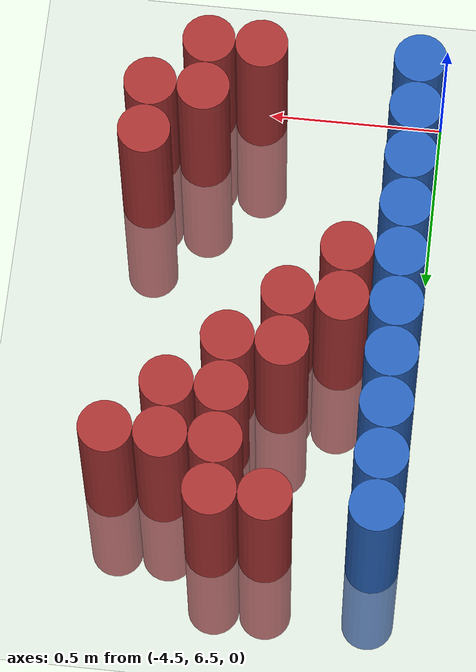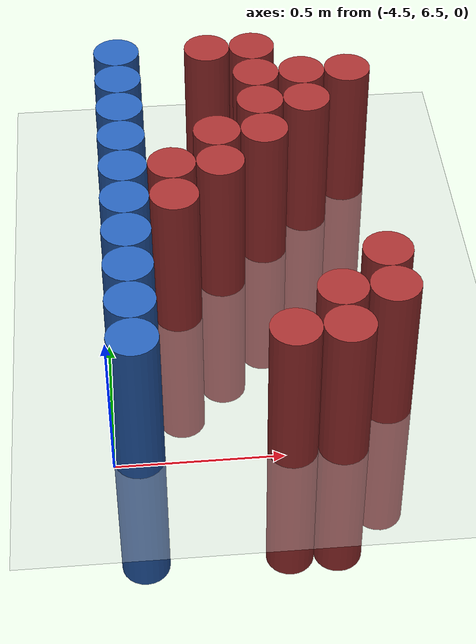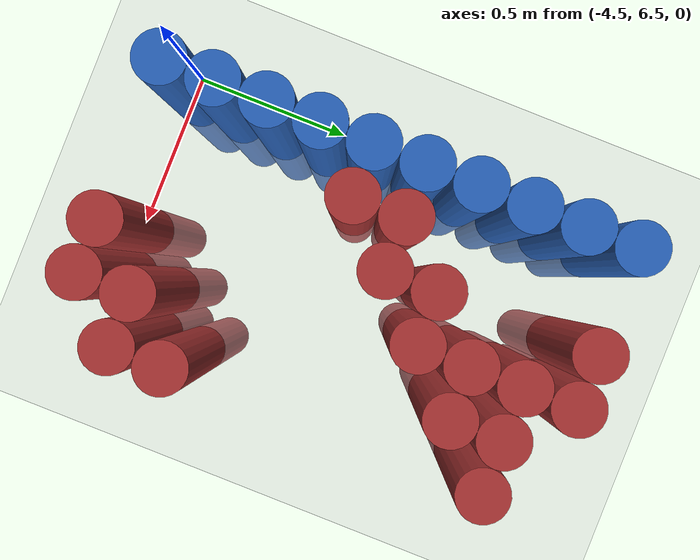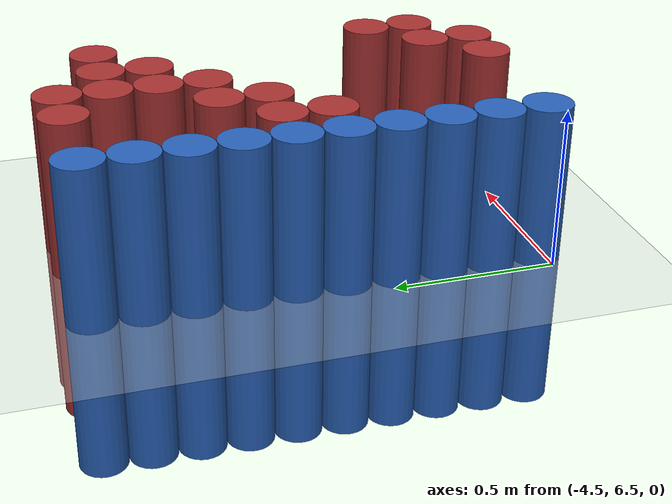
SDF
<sdf version="1.6">
 <world name="world_183">
  <model name="ground_plane">
   <static>1</static>
   <link name="link">
    <collision name="collision">
     <geometry><plane><normal>0 0 1</normal><size>100 100</size></plane></geometry>
     <surface><friction><ode><mu>100</mu><mu2>50</mu2></ode></friction></surface>
    </collision>
    <visual name="visual">
     <cast_shadows>0</cast_shadows>
     <geometry><plane><normal>0 0 1</normal><size>100 100</size></plane></geometry>
     <material>
      <script><uri>file://media/materials/scripts/gazebo.material</uri><name>Gazebo/Grey</name></script>
     </material>
    </visual>
   </link>
  </model>
  <model name="unit_cylinder_105">
   <static>1</static>
   <pose>-4.425000 6.525000 0.000000 0.000000 0.000000 0.000000</pose>
   <link name="link">
    <inertial>
     <mass>1</mass>
     <inertia><ixx>0.145833</ixx><ixy>0</ixy><ixz>0</ixz><iyy>0.145833</iyy><iyz>0</iyz><izz>0.125</izz></inertia>
    </inertial>
    <collision name="collision">
     <geometry><cylinder><radius>0.075000</radius><length>1</length></cylinder></geometry>
    </collision>
    <visual name="visual">
     <geometry><cylinder><radius>0.075000</radius><length>1</length></cylinder></geometry>
     <material>
      <ambient>0.152000 0.379000 0.720000 1</ambient>
      <diffuse>0.152000 0.379000 0.720000 1</diffuse>
     </material>
     <material>
      <script><name>Gazebo/Grey</name><uri>file://media/materials/scripts/gazebo.material</uri></script>
     </material>
    </visual>
   </link>
  </model>
  <model name="unit_cylinder_106">
   <static>1</static>
   <pose>-4.425000 6.675000 0.000000 0.000000 0.000000 0.000000</pose>
   <link name="link">
    <inertial>
     <mass>1</mass>
     <inertia><ixx>0.145833</ixx><ixy>0</ixy><ixz>0</ixz><iyy>0.145833</iyy><iyz>0</iyz><izz>0.125</izz></inertia>
    </inertial>
    <collision name="collision">
     <geometry><cylinder><radius>0.075000</radius><length>1</length></cylinder></geometry>
    </collision>
    <visual name="visual">
     <geometry><cylinder><radius>0.075000</radius><length>1</length></cylinder></geometry>
     <material>
      <ambient>0.152000 0.379000 0.720000 1</ambient>
      <diffuse>0.152000 0.379000 0.720000 1</diffuse>
     </material>
     <material>
      <script><name>Gazebo/Grey</name><uri>file://media/materials/scripts/gazebo.material</uri></script>
     </material>
    </visual>
   </link>
  </model>
  <model name="unit_cylinder_107">
   <static>1</static>
   <pose>-4.425000 6.825000 0.000000 0.000000 0.000000 0.000000</pose>
   <link name="link">
    <inertial>
     <mass>1</mass>
     <inertia><ixx>0.145833</ixx><ixy>0</ixy><ixz>0</ixz><iyy>0.145833</iyy><iyz>0</iyz><izz>0.125</izz></inertia>
    </inertial>
    <collision name="collision">
     <geometry><cylinder><radius>0.075000</radius><length>1</length></cylinder></geometry>
    </collision>
    <visual name="visual">
     <geometry><cylinder><radius>0.075000</radius><length>1</length></cylinder></geometry>
     <material>
      <ambient>0.152000 0.379000 0.720000 1</ambient>
      <diffuse>0.152000 0.379000 0.720000 1</diffuse>
     </material>
     <material>
      <script><name>Gazebo/Grey</name><uri>file://media/materials/scripts/gazebo.material</uri></script>
     </material>
    </visual>
   </link>
  </model>
  <model name="unit_cylinder_108">
   <static>1</static>
   <pose>-4.425000 6.975000 0.000000 0.000000 0.000000 0.000000</pose>
   <link name="link">
    <inertial>
     <mass>1</mass>
     <inertia><ixx>0.145833</ixx><ixy>0</ixy><ixz>0</ixz><iyy>0.145833</iyy><iyz>0</iyz><izz>0.125</izz></inertia>
    </inertial>
    <collision name="collision">
     <geometry><cylinder><radius>0.075000</radius><length>1</length></cylinder></geometry>
    </collision>
    <visual name="visual">
     <geometry><cylinder><radius>0.075000</radius><length>1</length></cylinder></geometry>
     <material>
      <ambient>0.152000 0.379000 0.720000 1</ambient>
      <diffuse>0.152000 0.379000 0.720000 1</diffuse>
     </material>
     <material>
      <script><name>Gazebo/Grey</name><uri>file://media/materials/scripts/gazebo.material</uri></script>
     </material>
    </visual>
   </link>
  </model>
  <model name="unit_cylinder_109">
   <static>1</static>
   <pose>-4.425000 7.125000 0.000000 0.000000 0.000000 0.000000</pose>
   <link name="link">
    <inertial>
     <mass>1</mass>
     <inertia><ixx>0.145833</ixx><ixy>0</ixy><ixz>0</ixz><iyy>0.145833</iyy><iyz>0</iyz><izz>0.125</izz></inertia>
    </inertial>
    <collision name="collision">
     <geometry><cylinder><radius>0.075000</radius><length>1</length></cylinder></geometry>
    </collision>
    <visual name="visual">
     <geometry><cylinder><radius>0.075000</radius><length>1</length></cylinder></geometry>
     <material>
      <ambient>0.152000 0.379000 0.720000 1</ambient>
      <diffuse>0.152000 0.379000 0.720000 1</diffuse>
     </material>
     <material>
      <script><name>Gazebo/Grey</name><uri>file://media/materials/scripts/gazebo.material</uri></script>
     </material>
    </visual>
   </link>
  </model>
  <model name="unit_cylinder_110">
   <static>1</static>
   <pose>-4.425000 7.275000 0.000000 0.000000 0.000000 0.000000</pose>
   <link name="link">
    <inertial>
     <mass>1</mass>
     <inertia><ixx>0.145833</ixx><ixy>0</ixy><ixz>0</ixz><iyy>0.145833</iyy><iyz>0</iyz><izz>0.125</izz></inertia>
    </inertial>
    <collision name="collision">
     <geometry><cylinder><radius>0.075000</radius><length>1</length></cylinder></geometry>
    </collision>
    <visual name="visual">
     <geometry><cylinder><radius>0.075000</radius><length>1</length></cylinder></geometry>
     <material>
      <ambient>0.152000 0.379000 0.720000 1</ambient>
      <diffuse>0.152000 0.379000 0.720000 1</diffuse>
     </material>
     <material>
      <script><name>Gazebo/Grey</name><uri>file://media/materials/scripts/gazebo.material</uri></script>
     </material>
    </visual>
   </link>
  </model>
  <model name="unit_cylinder_111">
   <static>1</static>
   <pose>-4.425000 7.425000 0.000000 0.000000 0.000000 0.000000</pose>
   <link name="link">
    <inertial>
     <mass>1</mass>
     <inertia><ixx>0.145833</ixx><ixy>0</ixy><ixz>0</ixz><iyy>0.145833</iyy><iyz>0</iyz><izz>0.125</izz></inertia>
    </inertial>
    <collision name="collision">
     <geometry><cylinder><radius>0.075000</radius><length>1</length></cylinder></geometry>
    </collision>
    <visual name="visual">
     <geometry><cylinder><radius>0.075000</radius><length>1</length></cylinder></geometry>
     <material>
      <ambient>0.152000 0.379000 0.720000 1</ambient>
      <diffuse>0.152000 0.379000 0.720000 1</diffuse>
     </material>
     <material>
      <script><name>Gazebo/Grey</name><uri>file://media/materials/scripts/gazebo.material</uri></script>
     </material>
    </visual>
   </link>
  </model>
  <model name="unit_cylinder_112">
   <static>1</static>
   <pose>-4.425000 7.575000 0.000000 0.000000 0.000000 0.000000</pose>
   <link name="link">
    <inertial>
     <mass>1</mass>
     <inertia><ixx>0.145833</ixx><ixy>0</ixy><ixz>0</ixz><iyy>0.145833</iyy><iyz>0</iyz><izz>0.125</izz></inertia>
    </inertial>
    <collision name="collision">
     <geometry><cylinder><radius>0.075000</radius><length>1</length></cylinder></geometry>
    </collision>
    <visual name="visual">
     <geometry><cylinder><radius>0.075000</radius><length>1</length></cylinder></geometry>
     <material>
      <ambient>0.152000 0.379000 0.720000 1</ambient>
      <diffuse>0.152000 0.379000 0.720000 1</diffuse>
     </material>
     <material>
      <script><name>Gazebo/Grey</name><uri>file://media/materials/scripts/gazebo.material</uri></script>
     </material>
    </visual>
   </link>
  </model>
  <model name="unit_cylinder_113">
   <static>1</static>
   <pose>-4.425000 7.725000 0.000000 0.000000 0.000000 0.000000</pose>
   <link name="link">
    <inertial>
     <mass>1</mass>
     <inertia><ixx>0.145833</ixx><ixy>0</ixy><ixz>0</ixz><iyy>0.145833</iyy><iyz>0</iyz><izz>0.125</izz></inertia>
    </inertial>
    <collision name="collision">
     <geometry><cylinder><radius>0.075000</radius><length>1</length></cylinder></geometry>
    </collision>
    <visual name="visual">
     <geometry><cylinder><radius>0.075000</radius><length>1</length></cylinder></geometry>
     <material>
      <ambient>0.152000 0.379000 0.720000 1</ambient>
      <diffuse>0.152000 0.379000 0.720000 1</diffuse>
     </material>
     <material>
      <script><name>Gazebo/Grey</name><uri>file://media/materials/scripts/gazebo.material</uri></script>
     </material>
    </visual>
   </link>
  </model>
  <model name="unit_cylinder_114">
   <static>1</static>
   <pose>-4.425000 7.875000 0.000000 0.000000 0.000000 0.000000</pose>
   <link name="link">
    <inertial>
     <mass>1</mass>
     <inertia><ixx>0.145833</ixx><ixy>0</ixy><ixz>0</ixz><iyy>0.145833</iyy><iyz>0</iyz><izz>0.125</izz></inertia>
    </inertial>
    <collision name="collision">
     <geometry><cylinder><radius>0.075000</radius><length>1</length></cylinder></geometry>
    </collision>
    <visual name="visual">
     <geometry><cylinder><radius>0.075000</radius><length>1</length></cylinder></geometry>
     <material>
      <ambient>0.152000 0.379000 0.720000 1</ambient>
      <diffuse>0.152000 0.379000 0.720000 1</diffuse>
     </material>
     <material>
      <script><name>Gazebo/Grey</name><uri>file://media/materials/scripts/gazebo.material</uri></script>
     </material>
    </visual>
   </link>
  </model>
  <model name="unit_cylinder_129">
   <static>1</static>
   <pose>-4.275000 7.125000 0.000000 0.000000 0.000000 0.000000</pose>
   <link name="link">
    <inertial>
     <mass>1</mass>
     <inertia><ixx>0.145833</ixx><ixy>0</ixy><ixz>0</ixz><iyy>0.145833</iyy><iyz>0</iyz><izz>0.125</izz></inertia>
    </inertial>
    <collision name="collision">
     <geometry><cylinder><radius>0.075000</radius><length>1</length></cylinder></geometry>
    </collision>
    <visual name="visual">
     <geometry><cylinder><radius>0.075000</radius><length>1</length></cylinder></geometry>
     <material>
      <ambient>0.648000 0.192000 0.192000 1</ambient>
      <diffuse>0.648000 0.192000 0.192000 1</diffuse>
     </material>
     <material>
      <script><name>Gazebo/Grey</name><uri>file://media/materials/scripts/gazebo.material</uri></script>
     </material>
    </visual>
   </link>
  </model>
  <model name="unit_cylinder_130">
   <static>1</static>
   <pose>-4.275000 7.275000 0.000000 0.000000 0.000000 0.000000</pose>
   <link name="link">
    <inertial>
     <mass>1</mass>
     <inertia><ixx>0.145833</ixx><ixy>0</ixy><ixz>0</ixz><iyy>0.145833</iyy><iyz>0</iyz><izz>0.125</izz></inertia>
    </inertial>
    <collision name="collision">
     <geometry><cylinder><radius>0.075000</radius><length>1</length></cylinder></geometry>
    </collision>
    <visual name="visual">
     <geometry><cylinder><radius>0.075000</radius><length>1</length></cylinder></geometry>
     <material>
      <ambient>0.648000 0.192000 0.192000 1</ambient>
      <diffuse>0.648000 0.192000 0.192000 1</diffuse>
     </material>
     <material>
      <script><name>Gazebo/Grey</name><uri>file://media/materials/scripts/gazebo.material</uri></script>
     </material>
    </visual>
   </link>
  </model>
  <model name="unit_cylinder_138">
   <static>1</static>
   <pose>-4.125000 7.275000 0.000000 0.000000 0.000000 0.000000</pose>
   <link name="link">
    <inertial>
     <mass>1</mass>
     <inertia><ixx>0.145833</ixx><ixy>0</ixy><ixz>0</ixz><iyy>0.145833</iyy><iyz>0</iyz><izz>0.125</izz></inertia>
    </inertial>
    <collision name="collision">
     <geometry><cylinder><radius>0.075000</radius><length>1</length></cylinder></geometry>
    </collision>
    <visual name="visual">
     <geometry><cylinder><radius>0.075000</radius><length>1</length></cylinder></geometry>
     <material>
      <ambient>0.648000 0.192000 0.192000 1</ambient>
      <diffuse>0.648000 0.192000 0.192000 1</diffuse>
     </material>
     <material>
      <script><name>Gazebo/Grey</name><uri>file://media/materials/scripts/gazebo.material</uri></script>
     </material>
    </visual>
   </link>
  </model>
  <model name="unit_cylinder_139">
   <static>1</static>
   <pose>-4.125000 7.425000 0.000000 0.000000 0.000000 0.000000</pose>
   <link name="link">
    <inertial>
     <mass>1</mass>
     <inertia><ixx>0.145833</ixx><ixy>0</ixy><ixz>0</ixz><iyy>0.145833</iyy><iyz>0</iyz><izz>0.125</izz></inertia>
    </inertial>
    <collision name="collision">
     <geometry><cylinder><radius>0.075000</radius><length>1</length></cylinder></geometry>
    </collision>
    <visual name="visual">
     <geometry><cylinder><radius>0.075000</radius><length>1</length></cylinder></geometry>
     <material>
      <ambient>0.648000 0.192000 0.192000 1</ambient>
      <diffuse>0.648000 0.192000 0.192000 1</diffuse>
     </material>
     <material>
      <script><name>Gazebo/Grey</name><uri>file://media/materials/scripts/gazebo.material</uri></script>
     </material>
    </visual>
   </link>
  </model>
  <model name="unit_cylinder_140">
   <static>1</static>
   <pose>-4.125000 7.875000 0.000000 0.000000 0.000000 0.000000</pose>
   <link name="link">
    <inertial>
     <mass>1</mass>
     <inertia><ixx>0.145833</ixx><ixy>0</ixy><ixz>0</ixz><iyy>0.145833</iyy><iyz>0</iyz><izz>0.125</izz></inertia>
    </inertial>
    <collision name="collision">
     <geometry><cylinder><radius>0.075000</radius><length>1</length></cylinder></geometry>
    </collision>
    <visual name="visual">
     <geometry><cylinder><radius>0.075000</radius><length>1</length></cylinder></geometry>
     <material>
      <ambient>0.648000 0.192000 0.192000 1</ambient>
      <diffuse>0.648000 0.192000 0.192000 1</diffuse>
     </material>
     <material>
      <script><name>Gazebo/Grey</name><uri>file://media/materials/scripts/gazebo.material</uri></script>
     </material>
    </visual>
   </link>
  </model>
  <model name="unit_cylinder_144">
   <static>1</static>
   <pose>-3.975000 6.525000 0.000000 0.000000 0.000000 0.000000</pose>
   <link name="link">
    <inertial>
     <mass>1</mass>
     <inertia><ixx>0.145833</ixx><ixy>0</ixy><ixz>0</ixz><iyy>0.145833</iyy><iyz>0</iyz><izz>0.125</izz></inertia>
    </inertial>
    <collision name="collision">
     <geometry><cylinder><radius>0.075000</radius><length>1</length></cylinder></geometry>
    </collision>
    <visual name="visual">
     <geometry><cylinder><radius>0.075000</radius><length>1</length></cylinder></geometry>
     <material>
      <ambient>0.648000 0.192000 0.192000 1</ambient>
      <diffuse>0.648000 0.192000 0.192000 1</diffuse>
     </material>
     <material>
      <script><name>Gazebo/Grey</name><uri>file://media/materials/scripts/gazebo.material</uri></script>
     </material>
    </visual>
   </link>
  </model>
  <model name="unit_cylinder_145">
   <static>1</static>
   <pose>-3.975000 7.425000 0.000000 0.000000 0.000000 0.000000</pose>
   <link name="link">
    <inertial>
     <mass>1</mass>
     <inertia><ixx>0.145833</ixx><ixy>0</ixy><ixz>0</ixz><iyy>0.145833</iyy><iyz>0</iyz><izz>0.125</izz></inertia>
    </inertial>
    <collision name="collision">
     <geometry><cylinder><radius>0.075000</radius><length>1</length></cylinder></geometry>
    </collision>
    <visual name="visual">
     <geometry><cylinder><radius>0.075000</radius><length>1</length></cylinder></geometry>
     <material>
      <ambient>0.648000 0.192000 0.192000 1</ambient>
      <diffuse>0.648000 0.192000 0.192000 1</diffuse>
     </material>
     <material>
      <script><name>Gazebo/Grey</name><uri>file://media/materials/scripts/gazebo.material</uri></script>
     </material>
    </visual>
   </link>
  </model>
  <model name="unit_cylinder_146">
   <static>1</static>
   <pose>-3.975000 7.575000 0.000000 0.000000 0.000000 0.000000</pose>
   <link name="link">
    <inertial>
     <mass>1</mass>
     <inertia><ixx>0.145833</ixx><ixy>0</ixy><ixz>0</ixz><iyy>0.145833</iyy><iyz>0</iyz><izz>0.125</izz></inertia>
    </inertial>
    <collision name="collision">
     <geometry><cylinder><radius>0.075000</radius><length>1</length></cylinder></geometry>
    </collision>
    <visual name="visual">
     <geometry><cylinder><radius>0.075000</radius><length>1</length></cylinder></geometry>
     <material>
      <ambient>0.648000 0.192000 0.192000 1</ambient>
      <diffuse>0.648000 0.192000 0.192000 1</diffuse>
     </material>
     <material>
      <script><name>Gazebo/Grey</name><uri>file://media/materials/scripts/gazebo.material</uri></script>
     </material>
    </visual>
   </link>
  </model>
  <model name="unit_cylinder_147">
   <static>1</static>
   <pose>-3.975000 7.725000 0.000000 0.000000 0.000000 0.000000</pose>
   <link name="link">
    <inertial>
     <mass>1</mass>
     <inertia><ixx>0.145833</ixx><ixy>0</ixy><ixz>0</ixz><iyy>0.145833</iyy><iyz>0</iyz><izz>0.125</izz></inertia>
    </inertial>
    <collision name="collision">
     <geometry><cylinder><radius>0.075000</radius><length>1</length></cylinder></geometry>
    </collision>
    <visual name="visual">
     <geometry><cylinder><radius>0.075000</radius><length>1</length></cylinder></geometry>
     <material>
      <ambient>0.648000 0.192000 0.192000 1</ambient>
      <diffuse>0.648000 0.192000 0.192000 1</diffuse>
     </material>
     <material>
      <script><name>Gazebo/Grey</name><uri>file://media/materials/scripts/gazebo.material</uri></script>
     </material>
    </visual>
   </link>
  </model>
  <model name="unit_cylinder_148">
   <static>1</static>
   <pose>-3.975000 7.875000 0.000000 0.000000 0.000000 0.000000</pose>
   <link name="link">
    <inertial>
     <mass>1</mass>
     <inertia><ixx>0.145833</ixx><ixy>0</ixy><ixz>0</ixz><iyy>0.145833</iyy><iyz>0</iyz><izz>0.125</izz></inertia>
    </inertial>
    <collision name="collision">
     <geometry><cylinder><radius>0.075000</radius><length>1</length></cylinder></geometry>
    </collision>
    <visual name="visual">
     <geometry><cylinder><radius>0.075000</radius><length>1</length></cylinder></geometry>
     <material>
      <ambient>0.648000 0.192000 0.192000 1</ambient>
      <diffuse>0.648000 0.192000 0.192000 1</diffuse>
     </material>
     <material>
      <script><name>Gazebo/Grey</name><uri>file://media/materials/scripts/gazebo.material</uri></script>
     </material>
    </visual>
   </link>
  </model>
  <model name="unit_cylinder_155">
   <static>1</static>
   <pose>-3.825000 6.525000 0.000000 0.000000 0.000000 0.000000</pose>
   <link name="link">
    <inertial>
     <mass>1</mass>
     <inertia><ixx>0.145833</ixx><ixy>0</ixy><ixz>0</ixz><iyy>0.145833</iyy><iyz>0</iyz><izz>0.125</izz></inertia>
    </inertial>
    <collision name="collision">
     <geometry><cylinder><radius>0.075000</radius><length>1</length></cylinder></geometry>
    </collision>
    <visual name="visual">
     <geometry><cylinder><radius>0.075000</radius><length>1</length></cylinder></geometry>
     <material>
      <ambient>0.648000 0.192000 0.192000 1</ambient>
      <diffuse>0.648000 0.192000 0.192000 1</diffuse>
     </material>
     <material>
      <script><name>Gazebo/Grey</name><uri>file://media/materials/scripts/gazebo.material</uri></script>
     </material>
    </visual>
   </link>
  </model>
  <model name="unit_cylinder_156">
   <static>1</static>
   <pose>-3.825000 6.675000 0.000000 0.000000 0.000000 0.000000</pose>
   <link name="link">
    <inertial>
     <mass>1</mass>
     <inertia><ixx>0.145833</ixx><ixy>0</ixy><ixz>0</ixz><iyy>0.145833</iyy><iyz>0</iyz><izz>0.125</izz></inertia>
    </inertial>
    <collision name="collision">
     <geometry><cylinder><radius>0.075000</radius><length>1</length></cylinder></geometry>
    </collision>
    <visual name="visual">
     <geometry><cylinder><radius>0.075000</radius><length>1</length></cylinder></geometry>
     <material>
      <ambient>0.648000 0.192000 0.192000 1</ambient>
      <diffuse>0.648000 0.192000 0.192000 1</diffuse>
     </material>
     <material>
      <script><name>Gazebo/Grey</name><uri>file://media/materials/scripts/gazebo.material</uri></script>
     </material>
    </visual>
   </link>
  </model>
  <model name="unit_cylinder_157">
   <static>1</static>
   <pose>-3.825000 7.575000 0.000000 0.000000 0.000000 0.000000</pose>
   <link name="link">
    <inertial>
     <mass>1</mass>
     <inertia><ixx>0.145833</ixx><ixy>0</ixy><ixz>0</ixz><iyy>0.145833</iyy><iyz>0</iyz><izz>0.125</izz></inertia>
    </inertial>
    <collision name="collision">
     <geometry><cylinder><radius>0.075000</radius><length>1</length></cylinder></geometry>
    </collision>
    <visual name="visual">
     <geometry><cylinder><radius>0.075000</radius><length>1</length></cylinder></geometry>
     <material>
      <ambient>0.648000 0.192000 0.192000 1</ambient>
      <diffuse>0.648000 0.192000 0.192000 1</diffuse>
     </material>
     <material>
      <script><name>Gazebo/Grey</name><uri>file://media/materials/scripts/gazebo.material</uri></script>
     </material>
    </visual>
   </link>
  </model>
  <model name="unit_cylinder_158">
   <static>1</static>
   <pose>-3.825000 7.725000 0.000000 0.000000 0.000000 0.000000</pose>
   <link name="link">
    <inertial>
     <mass>1</mass>
     <inertia><ixx>0.145833</ixx><ixy>0</ixy><ixz>0</ixz><iyy>0.145833</iyy><iyz>0</iyz><izz>0.125</izz></inertia>
    </inertial>
    <collision name="collision">
     <geometry><cylinder><radius>0.075000</radius><length>1</length></cylinder></geometry>
    </collision>
    <visual name="visual">
     <geometry><cylinder><radius>0.075000</radius><length>1</length></cylinder></geometry>
     <material>
      <ambient>0.648000 0.192000 0.192000 1</ambient>
      <diffuse>0.648000 0.192000 0.192000 1</diffuse>
     </material>
     <material>
      <script><name>Gazebo/Grey</name><uri>file://media/materials/scripts/gazebo.material</uri></script>
     </material>
    </visual>
   </link>
  </model>
  <model name="unit_cylinder_165">
   <static>1</static>
   <pose>-3.675000 6.675000 0.000000 0.000000 0.000000 0.000000</pose>
   <link name="link">
    <inertial>
     <mass>1</mass>
     <inertia><ixx>0.145833</ixx><ixy>0</ixy><ixz>0</ixz><iyy>0.145833</iyy><iyz>0</iyz><izz>0.125</izz></inertia>
    </inertial>
    <collision name="collision">
     <geometry><cylinder><radius>0.075000</radius><length>1</length></cylinder></geometry>
    </collision>
    <visual name="visual">
     <geometry><cylinder><radius>0.075000</radius><length>1</length></cylinder></geometry>
     <material>
      <ambient>0.648000 0.192000 0.192000 1</ambient>
      <diffuse>0.648000 0.192000 0.192000 1</diffuse>
     </material>
     <material>
      <script><name>Gazebo/Grey</name><uri>file://media/materials/scripts/gazebo.material</uri></script>
     </material>
    </visual>
   </link>
  </model>
  <model name="unit_cylinder_166">
   <static>1</static>
   <pose>-3.675000 6.825000 0.000000 0.000000 0.000000 0.000000</pose>
   <link name="link">
    <inertial>
     <mass>1</mass>
     <inertia><ixx>0.145833</ixx><ixy>0</ixy><ixz>0</ixz><iyy>0.145833</iyy><iyz>0</iyz><izz>0.125</izz></inertia>
    </inertial>
    <collision name="collision">
     <geometry><cylinder><radius>0.075000</radius><length>1</length></cylinder></geometry>
    </collision>
    <visual name="visual">
     <geometry><cylinder><radius>0.075000</radius><length>1</length></cylinder></geometry>
     <material>
      <ambient>0.648000 0.192000 0.192000 1</ambient>
      <diffuse>0.648000 0.192000 0.192000 1</diffuse>
     </material>
     <material>
      <script><name>Gazebo/Grey</name><uri>file://media/materials/scripts/gazebo.material</uri></script>
     </material>
    </visual>
   </link>
  </model>
  <model name="unit_cylinder_167">
   <static>1</static>
   <pose>-3.675000 7.725000 0.000000 0.000000 0.000000 0.000000</pose>
   <link name="link">
    <inertial>
     <mass>1</mass>
     <inertia><ixx>0.145833</ixx><ixy>0</ixy><ixz>0</ixz><iyy>0.145833</iyy><iyz>0</iyz><izz>0.125</izz></inertia>
    </inertial>
    <collision name="collision">
     <geometry><cylinder><radius>0.075000</radius><length>1</length></cylinder></geometry>
    </collision>
    <visual name="visual">
     <geometry><cylinder><radius>0.075000</radius><length>1</length></cylinder></geometry>
     <material>
      <ambient>0.648000 0.192000 0.192000 1</ambient>
      <diffuse>0.648000 0.192000 0.192000 1</diffuse>
     </material>
     <material>
      <script><name>Gazebo/Grey</name><uri>file://media/materials/scripts/gazebo.material</uri></script>
     </material>
    </visual>
   </link>
  </model>
 </world>
</sdf>
